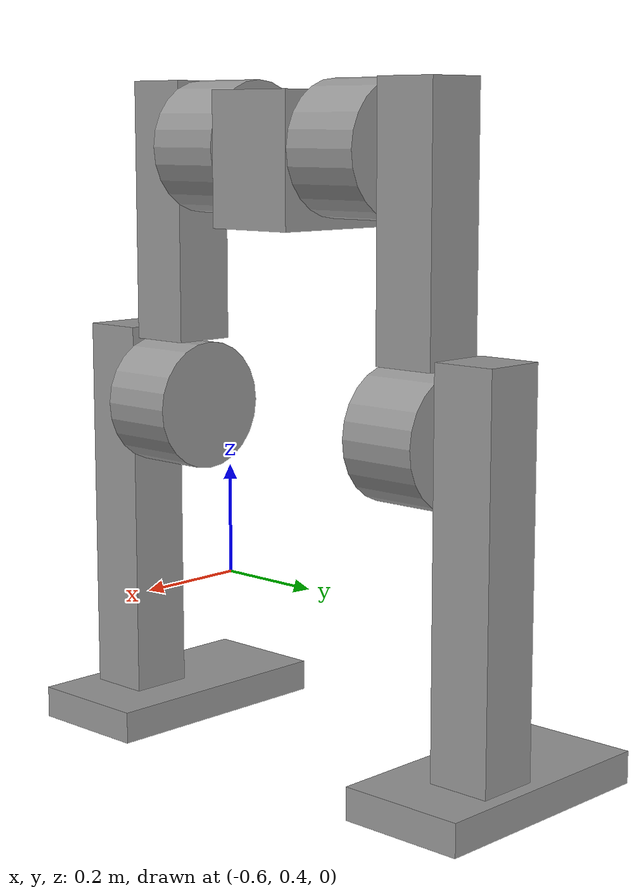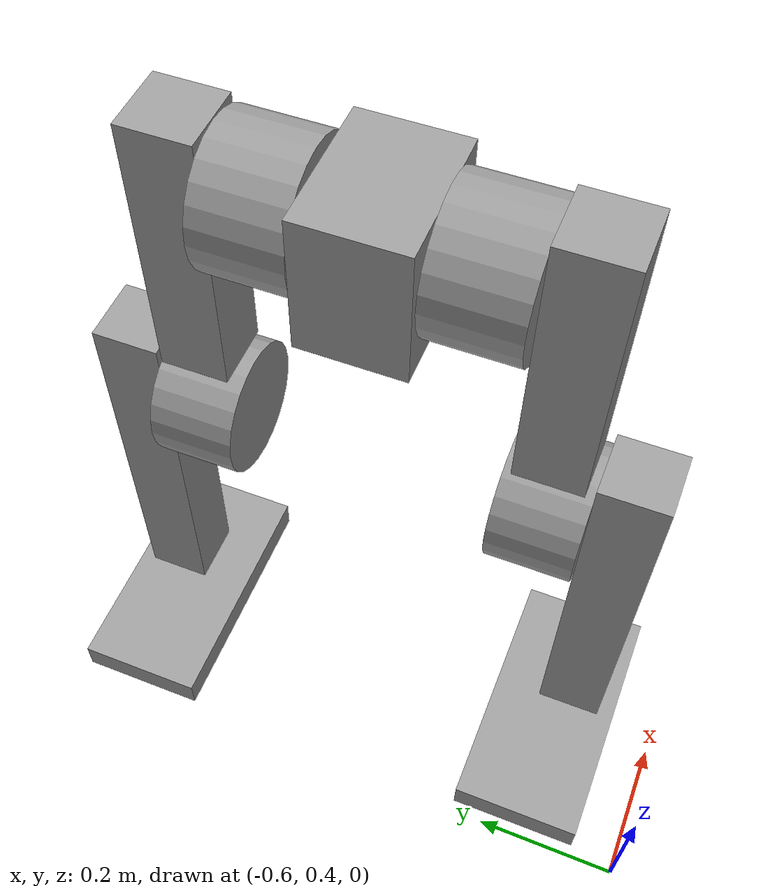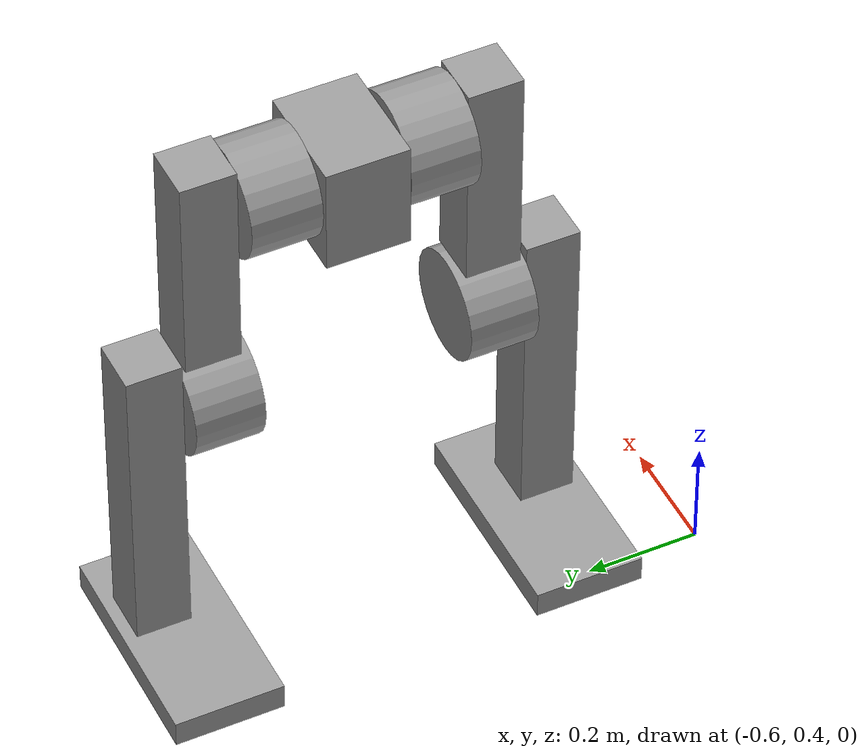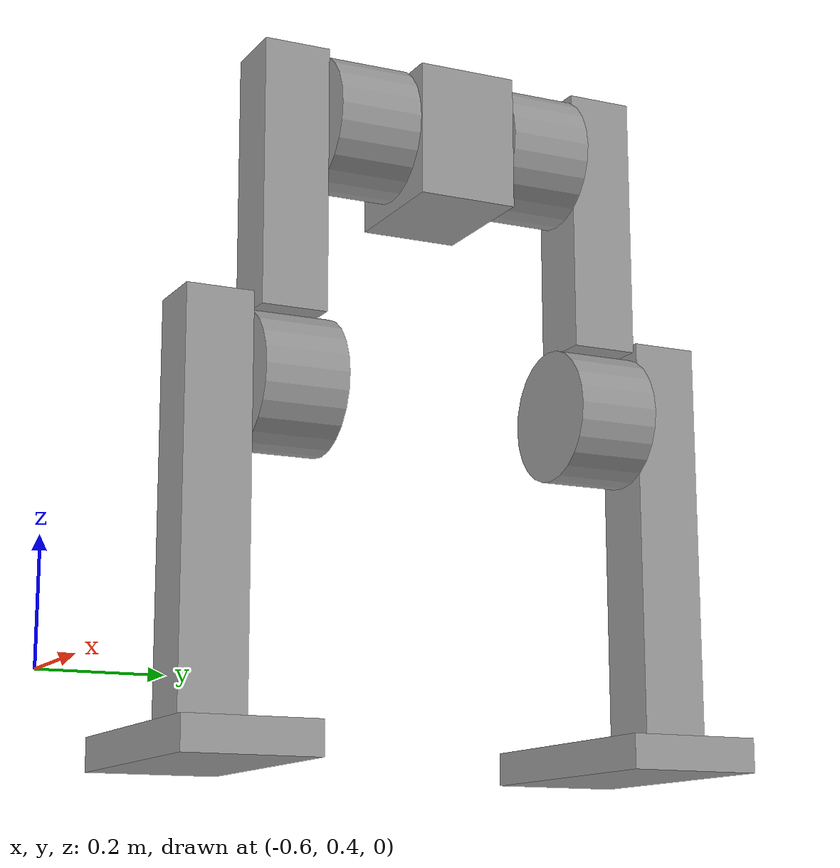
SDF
<?xml version='1.0'?>
<sdf version='1.6'>
  <model name='humanoid3'>
    <link name='link_0_clone'>
      <pose frame=''>-0.327462 1.23378 -0.128216 0 -0 0</pose>
      <inertial>
        <mass>1</mass>
        <inertia>
          <ixx>0.166667</ixx>
          <ixy>0</ixy>
          <ixz>0</ixz>
          <iyy>0.166667</iyy>
          <iyz>0</iyz>
          <izz>0.166667</izz>
        </inertia>
        <pose frame=''>0 0 0 0 -0 0</pose>
      </inertial>
      <self_collide>0</self_collide>
      <kinematic>0</kinematic>
      <visual name='visual'>
        <pose frame=''>0 0 0 0 -0 0</pose>
        <geometry>
          <box>
            <size>0.4 0.2 0.05</size>
          </box>
        </geometry>
        <material>
          <lighting>1</lighting>
          <script>
            <uri>file://media/materials/scripts/gazebo.material</uri>
            <name>Gazebo/Grey</name>
          </script>
          <ambient>0.3 0.3 0.3 1</ambient>
          <diffuse>0.7 0.7 0.7 1</diffuse>
          <specular>0.01 0.01 0.01 1</specular>
          <emissive>0 0 0 1</emissive>
          <shader type='vertex'>
            <normal_map>__default__</normal_map>
          </shader>
        </material>
        <transparency>0</transparency>
        <cast_shadows>1</cast_shadows>
      </visual>
      <collision name='collision'>
        <laser_retro>0</laser_retro>
        <max_contacts>10</max_contacts>
        <pose frame=''>0 0 0 0 -0 0</pose>
        <geometry>
          <box>
            <size>0.4 0.2 0.05</size>
          </box>
        </geometry>
        <surface>
          <friction>
            <ode>
              <mu>1</mu>
              <mu2>1</mu2>
              <fdir1>0 0 0</fdir1>
              <slip1>0</slip1>
              <slip2>0</slip2>
            </ode>
            <torsional>
              <coefficient>1</coefficient>
              <patch_radius>0</patch_radius>
              <surface_radius>0</surface_radius>
              <use_patch_radius>1</use_patch_radius>
              <ode>
                <slip>0</slip>
              </ode>
            </torsional>
          </friction>
          <bounce>
            <restitution_coefficient>0</restitution_coefficient>
            <threshold>1e+06</threshold>
          </bounce>
          <contact>
            <collide_without_contact>0</collide_without_contact>
            <collide_without_contact_bitmask>1</collide_without_contact_bitmask>
            <collide_bitmask>1</collide_bitmask>
            <ode>
              <soft_cfm>0</soft_cfm>
              <soft_erp>0.2</soft_erp>
              <kp>1e+13</kp>
              <kd>1</kd>
              <max_vel>0.01</max_vel>
              <min_depth>0</min_depth>
            </ode>
            <bullet>
              <split_impulse>1</split_impulse>
              <split_impulse_penetration_threshold>-0.01</split_impulse_penetration_threshold>
              <soft_cfm>0</soft_cfm>
              <soft_erp>0.2</soft_erp>
              <kp>1e+13</kp>
              <kd>1</kd>
            </bullet>
          </contact>
        </surface>
      </collision>
    </link>
    <link name='link_0_clone_clone'>
      <pose frame=''>-0.327462 0.558836 -0.128216 0 -0 0</pose>
      <inertial>
        <mass>1</mass>
        <inertia>
          <ixx>0.166667</ixx>
          <ixy>0</ixy>
          <ixz>0</ixz>
          <iyy>0.166667</iyy>
          <iyz>0</iyz>
          <izz>0.166667</izz>
        </inertia>
        <pose frame=''>0 0 0 0 -0 0</pose>
      </inertial>
      <self_collide>0</self_collide>
      <kinematic>0</kinematic>
      <gravity>1</gravity>
      <visual name='visual'>
        <pose frame=''>0 0 0 0 -0 0</pose>
        <geometry>
          <box>
            <size>0.4 0.2 0.05</size>
          </box>
        </geometry>
        <material>
          <lighting>1</lighting>
          <script>
            <uri>file://media/materials/scripts/gazebo.material</uri>
            <name>Gazebo/Grey</name>
          </script>
          <ambient>0.3 0.3 0.3 1</ambient>
          <diffuse>0.7 0.7 0.7 1</diffuse>
          <specular>0.01 0.01 0.01 1</specular>
          <emissive>0 0 0 1</emissive>
          <shader type='vertex'>
            <normal_map>__default__</normal_map>
          </shader>
        </material>
        <transparency>0</transparency>
        <cast_shadows>1</cast_shadows>
      </visual>
      <collision name='collision'>
        <laser_retro>0</laser_retro>
        <max_contacts>10</max_contacts>
        <pose frame=''>0 0 0 0 -0 0</pose>
        <geometry>
          <box>
            <size>0.4 0.2 0.05</size>
          </box>
        </geometry>
        <surface>
          <friction>
            <ode>
              <mu>1</mu>
              <mu2>1</mu2>
              <fdir1>0 0 0</fdir1>
              <slip1>0</slip1>
              <slip2>0</slip2>
            </ode>
            <torsional>
              <coefficient>1</coefficient>
              <patch_radius>0</patch_radius>
              <surface_radius>0</surface_radius>
              <use_patch_radius>1</use_patch_radius>
              <ode>
                <slip>0</slip>
              </ode>
            </torsional>
          </friction>
          <bounce>
            <restitution_coefficient>0</restitution_coefficient>
            <threshold>1e+06</threshold>
          </bounce>
          <contact>
            <collide_without_contact>0</collide_without_contact>
            <collide_without_contact_bitmask>1</collide_without_contact_bitmask>
            <collide_bitmask>1</collide_bitmask>
            <ode>
              <soft_cfm>0</soft_cfm>
              <soft_erp>0.2</soft_erp>
              <kp>1e+13</kp>
              <kd>1</kd>
              <max_vel>0.01</max_vel>
              <min_depth>0</min_depth>
            </ode>
            <bullet>
              <split_impulse>1</split_impulse>
              <split_impulse_penetration_threshold>-0.01</split_impulse_penetration_threshold>
              <soft_cfm>0</soft_cfm>
              <soft_erp>0.2</soft_erp>
              <kp>1e+13</kp>
              <kd>1</kd>
            </bullet>
          </contact>
        </surface>
      </collision>
    </link>
    <link name='link_1'>
      <pose frame=''>-0.269493 0.9 0.764919 0 -0 0</pose>
      <inertial>
        <mass>1</mass>
        <inertia>
          <ixx>0.166667</ixx>
          <ixy>0</ixy>
          <ixz>0</ixz>
          <iyy>0.166667</iyy>
          <iyz>0</iyz>
          <izz>0.166667</izz>
        </inertia>
        <pose frame=''>0 0 0 0 -0 0</pose>
      </inertial>
      <self_collide>0</self_collide>
      <kinematic>0</kinematic>
      <gravity>1</gravity>
      <visual name='visual'>
        <pose frame=''>0 0 0 0 -0 0</pose>
        <geometry>
          <box>
            <size>0.2 0.15 0.2</size>
          </box>
        </geometry>
        <material>
          <lighting>1</lighting>
          <script>
            <uri>file://media/materials/scripts/gazebo.material</uri>
            <name>Gazebo/Grey</name>
          </script>
          <ambient>0.3 0.3 0.3 1</ambient>
          <diffuse>0.7 0.7 0.7 1</diffuse>
          <specular>0.01 0.01 0.01 1</specular>
          <emissive>0 0 0 1</emissive>
          <shader type='vertex'>
            <normal_map>__default__</normal_map>
          </shader>
        </material>
        <transparency>0</transparency>
        <cast_shadows>1</cast_shadows>
      </visual>
      <collision name='collision'>
        <laser_retro>0</laser_retro>
        <max_contacts>10</max_contacts>
        <pose frame=''>0 0 0 0 -0 0</pose>
        <geometry>
          <box>
            <size>0.2 0.15 0.2</size>
          </box>
        </geometry>
        <surface>
          <friction>
            <ode>
              <mu>1</mu>
              <mu2>1</mu2>
              <fdir1>0 0 0</fdir1>
              <slip1>0</slip1>
              <slip2>0</slip2>
            </ode>
            <torsional>
              <coefficient>1</coefficient>
              <patch_radius>0</patch_radius>
              <surface_radius>0</surface_radius>
              <use_patch_radius>1</use_patch_radius>
              <ode>
                <slip>0</slip>
              </ode>
            </torsional>
          </friction>
          <bounce>
            <restitution_coefficient>0</restitution_coefficient>
            <threshold>1e+06</threshold>
          </bounce>
          <contact>
            <collide_without_contact>0</collide_without_contact>
            <collide_without_contact_bitmask>1</collide_without_contact_bitmask>
            <collide_bitmask>1</collide_bitmask>
            <ode>
              <soft_cfm>0</soft_cfm>
              <soft_erp>0.2</soft_erp>
              <kp>1e+13</kp>
              <kd>1</kd>
              <max_vel>0.01</max_vel>
              <min_depth>0</min_depth>
            </ode>
            <bullet>
              <split_impulse>1</split_impulse>
              <split_impulse_penetration_threshold>-0.01</split_impulse_penetration_threshold>
              <soft_cfm>0</soft_cfm>
              <soft_erp>0.2</soft_erp>
              <kp>1e+13</kp>
              <kd>1</kd>
            </bullet>
          </contact>
        </surface>
      </collision>
    </link>
    <link name='link_2'>
      <pose frame=''>-0.26746 1.04068 0.781244 1.57109 -1.5566 3.1413</pose>
      <inertial>
        <mass>1</mass>
        <inertia>
          <ixx>0.145833</ixx>
          <ixy>0</ixy>
          <ixz>0</ixz>
          <iyy>0.145833</iyy>
          <iyz>0</iyz>
          <izz>0.125</izz>
        </inertia>
        <pose frame=''>0 0 0 0 -0 0</pose>
      </inertial>
      <self_collide>0</self_collide>
      <kinematic>0</kinematic>
      <gravity>1</gravity>
      <visual name='visual'>
        <pose frame=''>0 0 0 0 -0 0</pose>
        <geometry>
          <cylinder>
            <radius>0.1</radius>
            <length>0.125</length>
          </cylinder>
        </geometry>
        <material>
          <lighting>1</lighting>
          <script>
            <uri>file://media/materials/scripts/gazebo.material</uri>
            <name>Gazebo/Grey</name>
          </script>
          <ambient>0.3 0.3 0.3 1</ambient>
          <diffuse>0.7 0.7 0.7 1</diffuse>
          <specular>0.01 0.01 0.01 1</specular>
          <emissive>0 0 0 1</emissive>
          <shader type='vertex'>
            <normal_map>__default__</normal_map>
          </shader>
        </material>
        <transparency>0</transparency>
        <cast_shadows>1</cast_shadows>
      </visual>
      <collision name='collision'>
        <laser_retro>0</laser_retro>
        <max_contacts>10</max_contacts>
        <pose frame=''>0 0 0 0 -0 0</pose>
        <geometry>
          <cylinder>
            <radius>0.1</radius>
            <length>0.125</length>
          </cylinder>
        </geometry>
        <surface>
          <friction>
            <ode>
              <mu>1</mu>
              <mu2>1</mu2>
              <fdir1>0 0 0</fdir1>
              <slip1>0</slip1>
              <slip2>0</slip2>
            </ode>
            <torsional>
              <coefficient>1</coefficient>
              <patch_radius>0</patch_radius>
              <surface_radius>0</surface_radius>
              <use_patch_radius>1</use_patch_radius>
              <ode>
                <slip>0</slip>
              </ode>
            </torsional>
          </friction>
          <bounce>
            <restitution_coefficient>0</restitution_coefficient>
            <threshold>1e+06</threshold>
          </bounce>
          <contact>
            <collide_without_contact>0</collide_without_contact>
            <collide_without_contact_bitmask>1</collide_without_contact_bitmask>
            <collide_bitmask>1</collide_bitmask>
            <ode>
              <soft_cfm>0</soft_cfm>
              <soft_erp>0.2</soft_erp>
              <kp>1e+13</kp>
              <kd>1</kd>
              <max_vel>0.01</max_vel>
              <min_depth>0</min_depth>
            </ode>
            <bullet>
              <split_impulse>1</split_impulse>
              <split_impulse_penetration_threshold>-0.01</split_impulse_penetration_threshold>
              <soft_cfm>0</soft_cfm>
              <soft_erp>0.2</soft_erp>
              <kp>1e+13</kp>
              <kd>1</kd>
            </bullet>
          </contact>
        </surface>
      </collision>
    </link>
    <link name='link_2_clone'>
      <pose frame=''>-0.267462 0.76 0.781244 -1.5708 -0 -0</pose>
      <inertial>
        <mass>1</mass>
        <inertia>
          <ixx>0.145833</ixx>
          <ixy>0</ixy>
          <ixz>0</ixz>
          <iyy>0.145833</iyy>
          <iyz>0</iyz>
          <izz>0.125</izz>
        </inertia>
        <pose frame=''>0 0 0 0 -0 0</pose>
      </inertial>
      <self_collide>0</self_collide>
      <kinematic>0</kinematic>
      <gravity>1</gravity>
      <visual name='visual'>
        <pose frame=''>0 0 0 0 -0 0</pose>
        <geometry>
          <cylinder>
            <radius>0.1</radius>
            <length>0.125</length>
          </cylinder>
        </geometry>
        <material>
          <lighting>1</lighting>
          <script>
            <uri>file://media/materials/scripts/gazebo.material</uri>
            <name>Gazebo/Grey</name>
          </script>
          <ambient>0.3 0.3 0.3 1</ambient>
          <diffuse>0.7 0.7 0.7 1</diffuse>
          <specular>0.01 0.01 0.01 1</specular>
          <emissive>0 0 0 1</emissive>
          <shader type='vertex'>
            <normal_map>__default__</normal_map>
          </shader>
        </material>
        <transparency>0</transparency>
        <cast_shadows>1</cast_shadows>
      </visual>
      <collision name='collision'>
        <laser_retro>0</laser_retro>
        <max_contacts>10</max_contacts>
        <pose frame=''>0 0 0 0 -0 0</pose>
        <geometry>
          <cylinder>
            <radius>0.1</radius>
            <length>0.125</length>
          </cylinder>
        </geometry>
        <surface>
          <friction>
            <ode>
              <mu>1</mu>
              <mu2>1</mu2>
              <fdir1>0 0 0</fdir1>
              <slip1>0</slip1>
              <slip2>0</slip2>
            </ode>
            <torsional>
              <coefficient>1</coefficient>
              <patch_radius>0</patch_radius>
              <surface_radius>0</surface_radius>
              <use_patch_radius>1</use_patch_radius>
              <ode>
                <slip>0</slip>
              </ode>
            </torsional>
          </friction>
          <bounce>
            <restitution_coefficient>0</restitution_coefficient>
            <threshold>1e+06</threshold>
          </bounce>
          <contact>
            <collide_without_contact>0</collide_without_contact>
            <collide_without_contact_bitmask>1</collide_without_contact_bitmask>
            <collide_bitmask>1</collide_bitmask>
            <ode>
              <soft_cfm>0</soft_cfm>
              <soft_erp>0.2</soft_erp>
              <kp>1e+13</kp>
              <kd>1</kd>
              <max_vel>0.01</max_vel>
              <min_depth>0</min_depth>
            </ode>
            <bullet>
              <split_impulse>1</split_impulse>
              <split_impulse_penetration_threshold>-0.01</split_impulse_penetration_threshold>
              <soft_cfm>0</soft_cfm>
              <soft_erp>0.2</soft_erp>
              <kp>1e+13</kp>
              <kd>1</kd>
            </bullet>
          </contact>
        </surface>
      </collision>
    </link>
    <link name='link_2_clone_0'>
      <pose frame=''>-0.26901 1.14835 0.379834 1.57106 -1.5566 3.14133</pose>
      <inertial>
        <mass>1</mass>
        <inertia>
          <ixx>0.145833</ixx>
          <ixy>0</ixy>
          <ixz>0</ixz>
          <iyy>0.145833</iyy>
          <iyz>0</iyz>
          <izz>0.125</izz>
        </inertia>
        <pose frame=''>0 0 0 0 -0 0</pose>
      </inertial>
      <self_collide>0</self_collide>
      <kinematic>0</kinematic>
      <visual name='visual'>
        <pose frame=''>0 0 0 0 -0 0</pose>
        <geometry>
          <cylinder>
            <radius>0.1</radius>
            <length>0.125</length>
          </cylinder>
        </geometry>
        <material>
          <lighting>1</lighting>
          <script>
            <uri>file://media/materials/scripts/gazebo.material</uri>
            <name>Gazebo/Grey</name>
          </script>
          <ambient>0.3 0.3 0.3 1</ambient>
          <diffuse>0.7 0.7 0.7 1</diffuse>
          <specular>0.01 0.01 0.01 1</specular>
          <emissive>0 0 0 1</emissive>
          <shader type='vertex'>
            <normal_map>__default__</normal_map>
          </shader>
        </material>
        <transparency>0</transparency>
        <cast_shadows>1</cast_shadows>
      </visual>
      <collision name='collision'>
        <laser_retro>0</laser_retro>
        <max_contacts>10</max_contacts>
        <pose frame=''>0 0 0 0 -0 0</pose>
        <geometry>
          <cylinder>
            <radius>0.1</radius>
            <length>0.125</length>
          </cylinder>
        </geometry>
        <surface>
          <friction>
            <ode>
              <mu>1</mu>
              <mu2>1</mu2>
              <fdir1>0 0 0</fdir1>
              <slip1>0</slip1>
              <slip2>0</slip2>
            </ode>
            <torsional>
              <coefficient>1</coefficient>
              <patch_radius>0</patch_radius>
              <surface_radius>0</surface_radius>
              <use_patch_radius>1</use_patch_radius>
              <ode>
                <slip>0</slip>
              </ode>
            </torsional>
          </friction>
          <bounce>
            <restitution_coefficient>0</restitution_coefficient>
            <threshold>1e+06</threshold>
          </bounce>
          <contact>
            <collide_without_contact>0</collide_without_contact>
            <collide_without_contact_bitmask>1</collide_without_contact_bitmask>
            <collide_bitmask>1</collide_bitmask>
            <ode>
              <soft_cfm>0</soft_cfm>
              <soft_erp>0.2</soft_erp>
              <kp>1e+13</kp>
              <kd>1</kd>
              <max_vel>0.01</max_vel>
              <min_depth>0</min_depth>
            </ode>
            <bullet>
              <split_impulse>1</split_impulse>
              <split_impulse_penetration_threshold>-0.01</split_impulse_penetration_threshold>
              <soft_cfm>0</soft_cfm>
              <soft_erp>0.2</soft_erp>
              <kp>1e+13</kp>
              <kd>1</kd>
            </bullet>
          </contact>
        </surface>
      </collision>
    </link>
    <link name='link_2_clone_0_clone'>
      <pose frame=''>-0.265814 0.6475 0.379834 1.57106 -1.5566 3.14133</pose>
      <inertial>
        <mass>1</mass>
        <inertia>
          <ixx>0.145833</ixx>
          <ixy>0</ixy>
          <ixz>0</ixz>
          <iyy>0.145833</iyy>
          <iyz>0</iyz>
          <izz>0.125</izz>
        </inertia>
        <pose frame=''>0 0 0 0 -0 0</pose>
      </inertial>
      <self_collide>0</self_collide>
      <kinematic>0</kinematic>
      <gravity>1</gravity>
      <visual name='visual'>
        <pose frame=''>0 0 0 0 -0 0</pose>
        <geometry>
          <cylinder>
            <radius>0.1</radius>
            <length>0.125</length>
          </cylinder>
        </geometry>
        <material>
          <lighting>1</lighting>
          <script>
            <uri>file://media/materials/scripts/gazebo.material</uri>
            <name>Gazebo/Grey</name>
          </script>
          <ambient>0.3 0.3 0.3 1</ambient>
          <diffuse>0.7 0.7 0.7 1</diffuse>
          <specular>0.01 0.01 0.01 1</specular>
          <emissive>0 0 0 1</emissive>
          <shader type='vertex'>
            <normal_map>__default__</normal_map>
          </shader>
        </material>
        <transparency>0</transparency>
        <cast_shadows>1</cast_shadows>
      </visual>
      <collision name='collision'>
        <laser_retro>0</laser_retro>
        <max_contacts>10</max_contacts>
        <pose frame=''>0 0 0 0 -0 0</pose>
        <geometry>
          <cylinder>
            <radius>0.1</radius>
            <length>0.125</length>
          </cylinder>
        </geometry>
        <surface>
          <friction>
            <ode>
              <mu>1</mu>
              <mu2>1</mu2>
              <fdir1>0 0 0</fdir1>
              <slip1>0</slip1>
              <slip2>0</slip2>
            </ode>
            <torsional>
              <coefficient>1</coefficient>
              <patch_radius>0</patch_radius>
              <surface_radius>0</surface_radius>
              <use_patch_radius>1</use_patch_radius>
              <ode>
                <slip>0</slip>
              </ode>
            </torsional>
          </friction>
          <bounce>
            <restitution_coefficient>0</restitution_coefficient>
            <threshold>1e+06</threshold>
          </bounce>
          <contact>
            <collide_without_contact>0</collide_without_contact>
            <collide_without_contact_bitmask>1</collide_without_contact_bitmask>
            <collide_bitmask>1</collide_bitmask>
            <ode>
              <soft_cfm>0</soft_cfm>
              <soft_erp>0.2</soft_erp>
              <kp>1e+13</kp>
              <kd>1</kd>
              <max_vel>0.01</max_vel>
              <min_depth>0</min_depth>
            </ode>
            <bullet>
              <split_impulse>1</split_impulse>
              <split_impulse_penetration_threshold>-0.01</split_impulse_penetration_threshold>
              <soft_cfm>0</soft_cfm>
              <soft_erp>0.2</soft_erp>
              <kp>1e+13</kp>
              <kd>1</kd>
            </bullet>
          </contact>
        </surface>
      </collision>
    </link>
    <link name='link_3'>
      <pose frame=''>-0.267461 1.15468 0.681244 0 -0 0</pose>
      <inertial>
        <mass>1</mass>
        <inertia>
          <ixx>0.166667</ixx>
          <ixy>0</ixy>
          <ixz>0</ixz>
          <iyy>0.166667</iyy>
          <iyz>0</iyz>
          <izz>0.166667</izz>
        </inertia>
        <pose frame=''>0 0 0 0 -0 0</pose>
      </inertial>
      <self_collide>0</self_collide>
      <kinematic>0</kinematic>
      <gravity>1</gravity>
      <visual name='visual'>
        <pose frame=''>0 0 0 0 -0 0</pose>
        <geometry>
          <box>
            <size>0.1 0.1 0.4</size>
          </box>
        </geometry>
        <material>
          <lighting>1</lighting>
          <script>
            <uri>file://media/materials/scripts/gazebo.material</uri>
            <name>Gazebo/Grey</name>
          </script>
          <ambient>0.3 0.3 0.3 1</ambient>
          <diffuse>0.7 0.7 0.7 1</diffuse>
          <specular>0.01 0.01 0.01 1</specular>
          <emissive>0 0 0 1</emissive>
          <shader type='vertex'>
            <normal_map>__default__</normal_map>
          </shader>
        </material>
        <transparency>0</transparency>
        <cast_shadows>1</cast_shadows>
      </visual>
      <collision name='collision'>
        <laser_retro>0</laser_retro>
        <max_contacts>10</max_contacts>
        <pose frame=''>0 0 0 0 -0 0</pose>
        <geometry>
          <box>
            <size>0.1 0.1 0.4</size>
          </box>
        </geometry>
        <surface>
          <friction>
            <ode>
              <mu>1</mu>
              <mu2>1</mu2>
              <fdir1>0 0 0</fdir1>
              <slip1>0</slip1>
              <slip2>0</slip2>
            </ode>
            <torsional>
              <coefficient>1</coefficient>
              <patch_radius>0</patch_radius>
              <surface_radius>0</surface_radius>
              <use_patch_radius>1</use_patch_radius>
              <ode>
                <slip>0</slip>
              </ode>
            </torsional>
          </friction>
          <bounce>
            <restitution_coefficient>0</restitution_coefficient>
            <threshold>1e+06</threshold>
          </bounce>
          <contact>
            <collide_without_contact>0</collide_without_contact>
            <collide_without_contact_bitmask>1</collide_without_contact_bitmask>
            <collide_bitmask>1</collide_bitmask>
            <ode>
              <soft_cfm>0</soft_cfm>
              <soft_erp>0.2</soft_erp>
              <kp>1e+13</kp>
              <kd>1</kd>
              <max_vel>0.01</max_vel>
              <min_depth>0</min_depth>
            </ode>
            <bullet>
              <split_impulse>1</split_impulse>
              <split_impulse_penetration_threshold>-0.01</split_impulse_penetration_threshold>
              <soft_cfm>0</soft_cfm>
              <soft_erp>0.2</soft_erp>
              <kp>1e+13</kp>
              <kd>1</kd>
            </bullet>
          </contact>
        </surface>
      </collision>
    </link>
    <link name='link_3_clone'>
      <pose frame=''>-0.267462 0.6475 0.681244 0 -0 0</pose>
      <inertial>
        <mass>1</mass>
        <inertia>
          <ixx>0.166667</ixx>
          <ixy>0</ixy>
          <ixz>0</ixz>
          <iyy>0.166667</iyy>
          <iyz>0</iyz>
          <izz>0.166667</izz>
        </inertia>
        <pose frame=''>0 0 0 0 -0 0</pose>
      </inertial>
      <self_collide>0</self_collide>
      <kinematic>0</kinematic>
      <gravity>1</gravity>
      <visual name='visual'>
        <pose frame=''>0 0 0 0 -0 0</pose>
        <geometry>
          <box>
            <size>0.1 0.1 0.4</size>
          </box>
        </geometry>
        <material>
          <lighting>1</lighting>
          <script>
            <uri>file://media/materials/scripts/gazebo.material</uri>
            <name>Gazebo/Grey</name>
          </script>
          <ambient>0.3 0.3 0.3 1</ambient>
          <diffuse>0.7 0.7 0.7 1</diffuse>
          <specular>0.01 0.01 0.01 1</specular>
          <emissive>0 0 0 1</emissive>
          <shader type='vertex'>
            <normal_map>__default__</normal_map>
          </shader>
        </material>
        <transparency>0</transparency>
        <cast_shadows>1</cast_shadows>
      </visual>
      <collision name='collision'>
        <laser_retro>0</laser_retro>
        <max_contacts>10</max_contacts>
        <pose frame=''>0 0 0 0 -0 0</pose>
        <geometry>
          <box>
            <size>0.1 0.1 0.4</size>
          </box>
        </geometry>
        <surface>
          <friction>
            <ode>
              <mu>1</mu>
              <mu2>1</mu2>
              <fdir1>0 0 0</fdir1>
              <slip1>0</slip1>
              <slip2>0</slip2>
            </ode>
            <torsional>
              <coefficient>1</coefficient>
              <patch_radius>0</patch_radius>
              <surface_radius>0</surface_radius>
              <use_patch_radius>1</use_patch_radius>
              <ode>
                <slip>0</slip>
              </ode>
            </torsional>
          </friction>
          <bounce>
            <restitution_coefficient>0</restitution_coefficient>
            <threshold>1e+06</threshold>
          </bounce>
          <contact>
            <collide_without_contact>0</collide_without_contact>
            <collide_without_contact_bitmask>1</collide_without_contact_bitmask>
            <collide_bitmask>1</collide_bitmask>
            <ode>
              <soft_cfm>0</soft_cfm>
              <soft_erp>0.2</soft_erp>
              <kp>1e+13</kp>
              <kd>1</kd>
              <max_vel>0.01</max_vel>
              <min_depth>0</min_depth>
            </ode>
            <bullet>
              <split_impulse>1</split_impulse>
              <split_impulse_penetration_threshold>-0.01</split_impulse_penetration_threshold>
              <soft_cfm>0</soft_cfm>
              <soft_erp>0.2</soft_erp>
              <kp>1e+13</kp>
              <kd>1</kd>
            </bullet>
          </contact>
        </surface>
      </collision>
    </link>
    <link name='link_3_clone_0'>
      <pose frame=''>-0.26901 1.26085 0.196784 0 -0 0</pose>
      <inertial>
        <mass>1</mass>
        <inertia>
          <ixx>0.166667</ixx>
          <ixy>0</ixy>
          <ixz>0</ixz>
          <iyy>0.166667</iyy>
          <iyz>0</iyz>
          <izz>0.166667</izz>
        </inertia>
        <pose frame=''>0 0 0 0 -0 0</pose>
      </inertial>
      <self_collide>0</self_collide>
      <kinematic>0</kinematic>
      <visual name='visual'>
        <pose frame=''>0 0 0 0 -0 0</pose>
        <geometry>
          <box>
            <size>0.1 0.1 0.6</size>
          </box>
        </geometry>
        <material>
          <lighting>1</lighting>
          <script>
            <uri>file://media/materials/scripts/gazebo.material</uri>
            <name>Gazebo/Grey</name>
          </script>
          <ambient>0.3 0.3 0.3 1</ambient>
          <diffuse>0.7 0.7 0.7 1</diffuse>
          <specular>0.01 0.01 0.01 1</specular>
          <emissive>0 0 0 1</emissive>
          <shader type='vertex'>
            <normal_map>__default__</normal_map>
          </shader>
        </material>
        <transparency>0</transparency>
        <cast_shadows>1</cast_shadows>
      </visual>
      <collision name='collision'>
        <laser_retro>0</laser_retro>
        <max_contacts>10</max_contacts>
        <pose frame=''>0 0 0 0 -0 0</pose>
        <geometry>
          <box>
            <size>0.1 0.1 0.6</size>
          </box>
        </geometry>
        <surface>
          <friction>
            <ode>
              <mu>1</mu>
              <mu2>1</mu2>
              <fdir1>0 0 0</fdir1>
              <slip1>0</slip1>
              <slip2>0</slip2>
            </ode>
            <torsional>
              <coefficient>1</coefficient>
              <patch_radius>0</patch_radius>
              <surface_radius>0</surface_radius>
              <use_patch_radius>1</use_patch_radius>
              <ode>
                <slip>0</slip>
              </ode>
            </torsional>
          </friction>
          <bounce>
            <restitution_coefficient>0</restitution_coefficient>
            <threshold>1e+06</threshold>
          </bounce>
          <contact>
            <collide_without_contact>0</collide_without_contact>
            <collide_without_contact_bitmask>1</collide_without_contact_bitmask>
            <collide_bitmask>1</collide_bitmask>
            <ode>
              <soft_cfm>0</soft_cfm>
              <soft_erp>0.2</soft_erp>
              <kp>1e+13</kp>
              <kd>1</kd>
              <max_vel>0.01</max_vel>
              <min_depth>0</min_depth>
            </ode>
            <bullet>
              <split_impulse>1</split_impulse>
              <split_impulse_penetration_threshold>-0.01</split_impulse_penetration_threshold>
              <soft_cfm>0</soft_cfm>
              <soft_erp>0.2</soft_erp>
              <kp>1e+13</kp>
              <kd>1</kd>
            </bullet>
          </contact>
        </surface>
      </collision>
    </link>
    <link name='link_3_clone_0_clone'>
      <pose frame=''>-0.265814 0.535 0.196784 0 -0 0</pose>
      <inertial>
        <mass>1</mass>
        <inertia>
          <ixx>0.166667</ixx>
          <ixy>0</ixy>
          <ixz>0</ixz>
          <iyy>0.166667</iyy>
          <iyz>0</iyz>
          <izz>0.166667</izz>
        </inertia>
        <pose frame=''>0 0 0 0 -0 0</pose>
      </inertial>
      <self_collide>0</self_collide>
      <kinematic>0</kinematic>
      <gravity>1</gravity>
      <visual name='visual'>
        <pose frame=''>0 0 0 0 -0 0</pose>
        <geometry>
          <box>
            <size>0.1 0.1 0.6</size>
          </box>
        </geometry>
        <material>
          <lighting>1</lighting>
          <script>
            <uri>file://media/materials/scripts/gazebo.material</uri>
            <name>Gazebo/Grey</name>
          </script>
          <ambient>0.3 0.3 0.3 1</ambient>
          <diffuse>0.7 0.7 0.7 1</diffuse>
          <specular>0.01 0.01 0.01 1</specular>
          <emissive>0 0 0 1</emissive>
          <shader type='vertex'>
            <normal_map>__default__</normal_map>
          </shader>
        </material>
        <transparency>0</transparency>
        <cast_shadows>1</cast_shadows>
      </visual>
      <collision name='collision'>
        <laser_retro>0</laser_retro>
        <max_contacts>10</max_contacts>
        <pose frame=''>0 0 0 0 -0 0</pose>
        <geometry>
          <box>
            <size>0.1 0.1 0.6</size>
          </box>
        </geometry>
        <surface>
          <friction>
            <ode>
              <mu>1</mu>
              <mu2>1</mu2>
              <fdir1>0 0 0</fdir1>
              <slip1>0</slip1>
              <slip2>0</slip2>
            </ode>
            <torsional>
              <coefficient>1</coefficient>
              <patch_radius>0</patch_radius>
              <surface_radius>0</surface_radius>
              <use_patch_radius>1</use_patch_radius>
              <ode>
                <slip>0</slip>
              </ode>
            </torsional>
          </friction>
          <bounce>
            <restitution_coefficient>0</restitution_coefficient>
            <threshold>1e+06</threshold>
          </bounce>
          <contact>
            <collide_without_contact>0</collide_without_contact>
            <collide_without_contact_bitmask>1</collide_without_contact_bitmask>
            <collide_bitmask>1</collide_bitmask>
            <ode>
              <soft_cfm>0</soft_cfm>
              <soft_erp>0.2</soft_erp>
              <kp>1e+13</kp>
              <kd>1</kd>
              <max_vel>0.01</max_vel>
              <min_depth>0</min_depth>
            </ode>
            <bullet>
              <split_impulse>1</split_impulse>
              <split_impulse_penetration_threshold>-0.01</split_impulse_penetration_threshold>
              <soft_cfm>0</soft_cfm>
              <soft_erp>0.2</soft_erp>
              <kp>1e+13</kp>
              <kd>1</kd>
            </bullet>
          </contact>
        </surface>
      </collision>
    </link>
    <joint name='link_1_JOINT_0' type='revolute'>
      <parent>link_1</parent>
      <child>link_2</child>
      <pose frame=''>0 0 0 0 -0 0</pose>
      <axis>
        <xyz>0 0 -1</xyz>
        <use_parent_model_frame>0</use_parent_model_frame>
        <limit>
          <lower>-1.79769e+308</lower>
          <upper>1.79769e+308</upper>
          <effort>-1</effort>
          <velocity>-1</velocity>
        </limit>
        <dynamics>
          <spring_reference>0</spring_reference>
          <spring_stiffness>0</spring_stiffness>
          <damping>0</damping>
          <friction>0</friction>
        </dynamics>
      </axis>
      <physics>
        <ode>
          <limit>
            <cfm>0</cfm>
            <erp>0.2</erp>
          </limit>
          <suspension>
            <cfm>0</cfm>
            <erp>0.2</erp>
          </suspension>
        </ode>
      </physics>
    </joint>
    <joint name='link_1_JOINT_1' type='revolute'>
      <parent>link_1</parent>
      <child>link_2_clone</child>
      <pose frame=''>0 0 0 0 -0 0</pose>
      <axis>
        <xyz>0 0 1</xyz>
        <use_parent_model_frame>0</use_parent_model_frame>
        <limit>
          <lower>-1.79769e+308</lower>
          <upper>1.79769e+308</upper>
          <effort>-1</effort>
          <velocity>-1</velocity>
        </limit>
        <dynamics>
          <spring_reference>0</spring_reference>
          <spring_stiffness>0</spring_stiffness>
          <damping>0</damping>
          <friction>0</friction>
        </dynamics>
      </axis>
      <physics>
        <ode>
          <limit>
            <cfm>0</cfm>
            <erp>0.2</erp>
          </limit>
          <suspension>
            <cfm>0</cfm>
            <erp>0.2</erp>
          </suspension>
        </ode>
      </physics>
    </joint>
    <joint name='link_2_JOINT_2' type='fixed'>
      <parent>link_2</parent>
      <child>link_3</child>
      <pose frame=''>0 0 0.1 0 -0 0</pose>
      <physics>
        <ode>
          <limit>
            <cfm>0</cfm>
            <erp>0.2</erp>
          </limit>
          <suspension>
            <cfm>0</cfm>
            <erp>0.2</erp>
          </suspension>
        </ode>
      </physics>
    </joint>
    <joint name='link_2_clone_0_JOINT_8' type='revolute'>
      <parent>link_2_clone_0</parent>
      <child>link_3_clone_0</child>
      <pose frame=''>0 0 0.18 0 -0 0</pose>
      <axis>
        <xyz>0 -1 0</xyz>
        <use_parent_model_frame>0</use_parent_model_frame>
        <limit>
          <lower>-1.79769e+308</lower>
          <upper>1.79769e+308</upper>
          <effort>-1</effort>
          <velocity>-1</velocity>
        </limit>
        <dynamics>
          <spring_reference>0</spring_reference>
          <spring_stiffness>0</spring_stiffness>
          <damping>0</damping>
          <friction>0</friction>
        </dynamics>
      </axis>
      <physics>
        <ode>
          <limit>
            <cfm>0</cfm>
            <erp>0.2</erp>
          </limit>
          <suspension>
            <cfm>0</cfm>
            <erp>0.2</erp>
          </suspension>
        </ode>
      </physics>
    </joint>
    <joint name='link_2_clone_0_clone_JOINT_9' type='revolute'>
      <parent>link_2_clone_0_clone</parent>
      <child>link_3_clone_0_clone</child>
      <pose frame=''>0 0 0.18 0 -0 0</pose>
      <axis>
        <xyz>0 1 0</xyz>
        <use_parent_model_frame>0</use_parent_model_frame>
        <limit>
          <lower>-1.79769e+308</lower>
          <upper>1.79769e+308</upper>
          <effort>-1</effort>
          <velocity>-1</velocity>
        </limit>
        <dynamics>
          <spring_reference>0</spring_reference>
          <spring_stiffness>0</spring_stiffness>
          <damping>0</damping>
          <friction>0</friction>
        </dynamics>
      </axis>
      <physics>
        <ode>
          <limit>
            <cfm>0</cfm>
            <erp>0.2</erp>
          </limit>
          <suspension>
            <cfm>0</cfm>
            <erp>0.2</erp>
          </suspension>
        </ode>
      </physics>
    </joint>
    <joint name='link_2_clone_JOINT_3' type='fixed'>
      <parent>link_2_clone</parent>
      <child>link_3_clone</child>
      <pose frame=''>0 0 0.1 0 -0 0</pose>
      <physics>
        <ode>
          <limit>
            <cfm>0</cfm>
            <erp>0.2</erp>
          </limit>
          <suspension>
            <cfm>0</cfm>
            <erp>0.2</erp>
          </suspension>
        </ode>
      </physics>
    </joint>
    <joint name='link_3_JOINT_6' type='fixed'>
      <parent>link_3</parent>
      <child>link_2_clone_0</child>
      <pose frame=''>0 0 0 0 -0 0</pose>
      <physics>
        <ode>
          <limit>
            <cfm>0</cfm>
            <erp>0.2</erp>
          </limit>
          <suspension>
            <cfm>0</cfm>
            <erp>0.2</erp>
          </suspension>
        </ode>
      </physics>
    </joint>
    <joint name='link_3_clone_0_JOINT_10' type='fixed'>
      <parent>link_3_clone_0</parent>
      <child>link_0_clone</child>
      <pose frame=''>0 0 0 0 -0 0</pose>
      <physics>
        <ode>
          <limit>
            <cfm>0</cfm>
            <erp>0.2</erp>
          </limit>
          <suspension>
            <cfm>0</cfm>
            <erp>0.2</erp>
          </suspension>
        </ode>
      </physics>
    </joint>
    <joint name='link_3_clone_0_clone_JOINT_12' type='fixed'>
      <parent>link_3_clone_0_clone</parent>
      <child>link_0_clone_clone</child>
      <pose frame=''>0 0 0 0 -0 0</pose>
      <physics>
        <ode>
          <limit>
            <cfm>0</cfm>
            <erp>0.2</erp>
          </limit>
          <suspension>
            <cfm>0</cfm>
            <erp>0.2</erp>
          </suspension>
        </ode>
      </physics>
    </joint>
    <joint name='link_3_clone_JOINT_7' type='fixed'>
      <parent>link_3_clone</parent>
      <child>link_2_clone_0_clone</child>
      <pose frame=''>0 0 0 0 -0 0</pose>
      <physics>
        <ode>
          <limit>
            <cfm>0</cfm>
            <erp>0.2</erp>
          </limit>
          <suspension>
            <cfm>0</cfm>
            <erp>0.2</erp>
          </suspension>
        </ode>
      </physics>
    </joint>
    <static>0</static>
    <allow_auto_disable>1</allow_auto_disable>
  </model>
</sdf>
